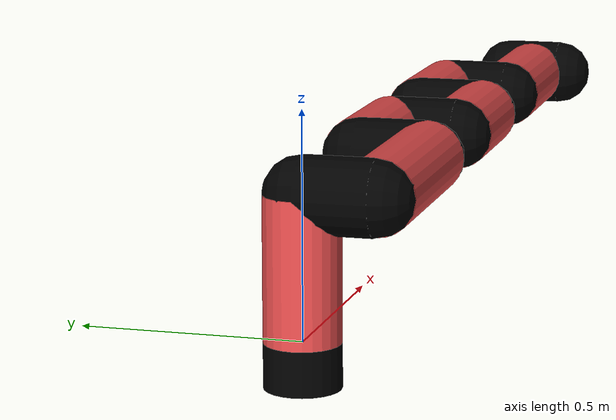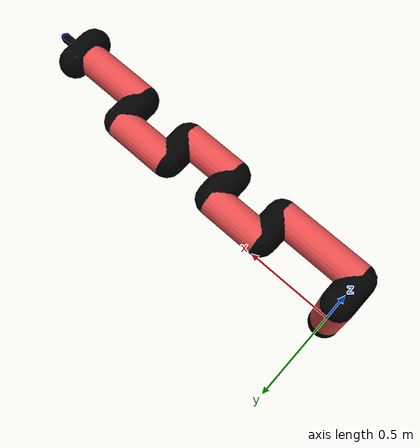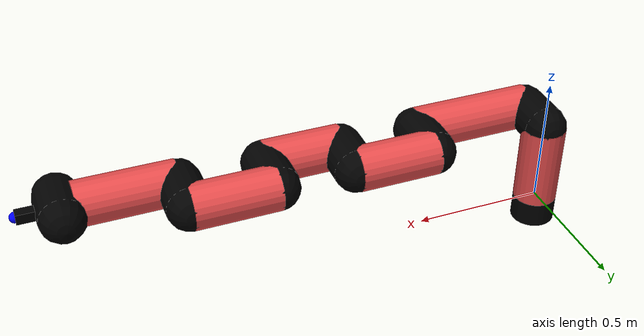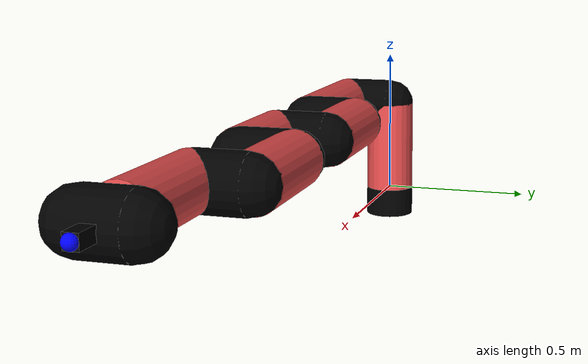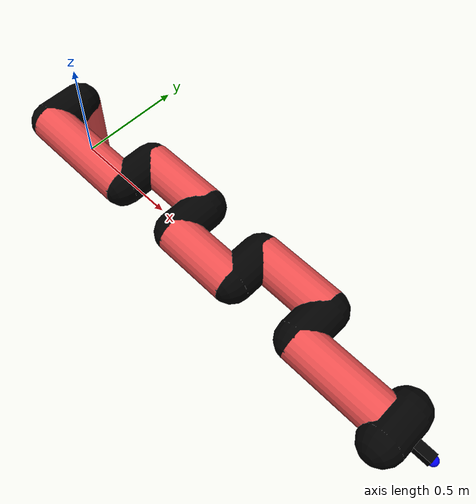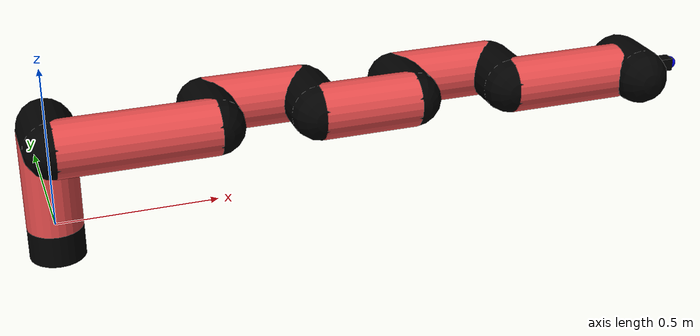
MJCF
<mujoco model="manipulator">
		<compiler angle="degree" coordinate="local" inertiafromgeom="auto" meshdir="meshes/"/>
		<option gravity="0 0 0" integrator="RK4" iterations="30" timestep="0.01"/>

		<default>
		<joint armature="1" limited="true" stiffness="10" damping="15" frictionloss="5.0"/>
		<geom conaffinity="1" condim="3" contype="1" friction=".5 .1 .1" margin="0.002"/>
		<motor ctrllimited="true"/>
		<position ctrllimited="true"/>
		</default>

		<asset>
		<texture builtin="gradient" height="100" rgb1="1.0 1.0 1.0" rgb2="1.0 1.0 1.0" type="skybox" width="100"/>
		<texture builtin="flat" height="32" name="arm_tex" rgb1="0.9 0.3 0.3" type="2d" width="32"/>
		<texture builtin="flat" height="32" name="gripper_tex" rgb1="0.0 0.0 0.0" type="cube" width="32"/>

		<material name="arm_mat" shininess="0.1" specular="0.1" texture="arm_tex"/>
		<material name="gripper_mat" shininess="1" specular="1" texture="gripper_tex"/>
		</asset>

		<worldbody>
		<light cutoff="45" diffuse=".8 .8 .8" dir="0 0.16 -1" directional="false" name="light" pos="0 -2.0 8.0" specular="0.3 0.3 0.3"/>

		<body name="base_link" pos="0 0 -0.1">
		<geom fromto="0 0 0 0 0 0.1" material="arm_mat" name="base_link" rgba="0.0 0.0 0.0 1" size="0.085" type="cylinder"/>
		</body>

		<body name="l1" pos="0 0 0">
<geom fromto="0 0 0 0 0 0.32" material="arm_mat" name="l1" rgba="0.9 0.3 0.3 1" size="0.085" type="cylinder"/>
<geom fromto="0 0 0.32 0 -0.16 0.32" material="arm_mat" name="l1_ex" rgba="0.0 0.0 0.0 1" size="0.085" type="capsule"/>
<joint axis="0 0 1" name="j1" pos="0 0 0" range="-90 90" damping="30.46" frictionloss="9.3"/>

<body name="l2" pos="0 -0.16 0.32">
<geom fromto="0 0 0 0.47 0 0" material="arm_mat" name="l2" rgba="0.9 0.3 0.3 1" size="0.085" type="cylinder"/>
<geom fromto="0.47 0 0 0.47 0.16 0" material="arm_mat" name="l2_ex" rgba="0.0 0.0 0.0 1" size="0.085" type="capsule"/>
<joint axis="0.02 1.23 0.15" name="j2" pos="0 0 0" range="-90 60" damping="28.89" frictionloss="9.53"/>

<body name="l3" pos="0.47 0.16 0">
<geom fromto="0 0 0 0.31 0 0" material="arm_mat" name="l3" rgba="0.9 0.3 0.3 1" size="0.085" type="cylinder"/>
<geom fromto="0.31 0 0 0.31 -0.16 0" material="arm_mat" name="l3_ex" rgba="0.0 0.0 0.0 1" size="0.085" type="capsule"/>
<joint axis="-0.23 1.1 -0.02" name="j3" pos="0 0 0" range="-30 60" damping="33.51" frictionloss="11.99"/>

<body name="l4" pos="0.31 -0.16 0">
<geom fromto="0 0 0 0.3 0 0" material="arm_mat" name="l4" rgba="0.9 0.3 0.3 1" size="0.085" type="cylinder"/>
<geom fromto="0.3 0 0 0.3 0.16 0" material="arm_mat" name="l4_ex" rgba="0.0 0.0 0.0 1" size="0.085" type="capsule"/>
<joint axis="0.22 0.86 -0.12" name="j4" pos="0 0 0" range="-30 60" damping="33.69" frictionloss="10.7"/>

<body name="l5" pos="0.3 0.16 0">
<geom fromto="0 0 0 0.32 0 0" material="arm_mat" name="l5" rgba="0.9 0.3 0.3 1" size="0.085" type="cylinder"/>
<geom fromto="0.32 0 0 0.32 -0.16 0" material="arm_mat" name="l5_ex" rgba="0.0 0.0 0.0 1" size="0.085" type="capsule"/>
<joint axis="-0.21 0.96 -0.2" name="j5" pos="0 0 0" range="-30 60" damping="28.6" frictionloss="10.65"/>

<body name="l6" pos="0.32 -0.16 0">
<geom fromto="0 0 0 0.37 0 0" material="arm_mat" name="l6" rgba="0.9 0.3 0.3 1" size="0.085" type="cylinder"/>
<joint axis="0.07 1.15 0.1" name="j6" pos="0 0 0" range="-30 60" damping="34.24" frictionloss="11.73"/>

<body name="gripper" pos="0.37 0 0">
<geom fromto="0.05 -0.07 0 0.05 0.07 0" material="gripper_mat" name="gripper" rgba="0.0 0.0 0.0 1" size="0.085" type="capsule"/><joint axis="1 0 0" name="j7" pos="0 0 0" range="-90 90" damping="15" frictionloss="5.0"/><body name="finger" pos="0.1 0 0">
<geom fromto="0 0.0 0 0.1 0.0 0" material="gripper_mat" name="finger" rgba="0.0 0.0 0.0 1" size="0.020 0.06 0.06" type="box"/>
</body>
<site name="current" pos="0.2 0. 0.0" rgba="0. 0. 1.0 1" size="0.02" type="sphere"/>
</body>
</body>
</body>
</body>
</body>
</body>
</body>
</worldbody>
<actuator>
<motor ctrllimited="true" ctrlrange="-1.0 1.0" joint="j1" gear="60.14"/>
<motor ctrllimited="true" ctrlrange="-1.0 1.0" joint="j2" gear="94.45"/>
<motor ctrllimited="true" ctrlrange="-1.0 1.0" joint="j3" gear="89.95"/>
<motor ctrllimited="true" ctrlrange="-1.0 1.0" joint="j4" gear="85.95"/>
<motor ctrllimited="true" ctrlrange="-1.0 1.0" joint="j5" gear="85.35"/>
<motor ctrllimited="true" ctrlrange="-1.0 1.0" joint="j6" gear="90.7"/>
<motor ctrllimited="true" ctrlrange="-1.0 1.0" joint="j7" gear="80"/>
</actuator>
</mujoco>
